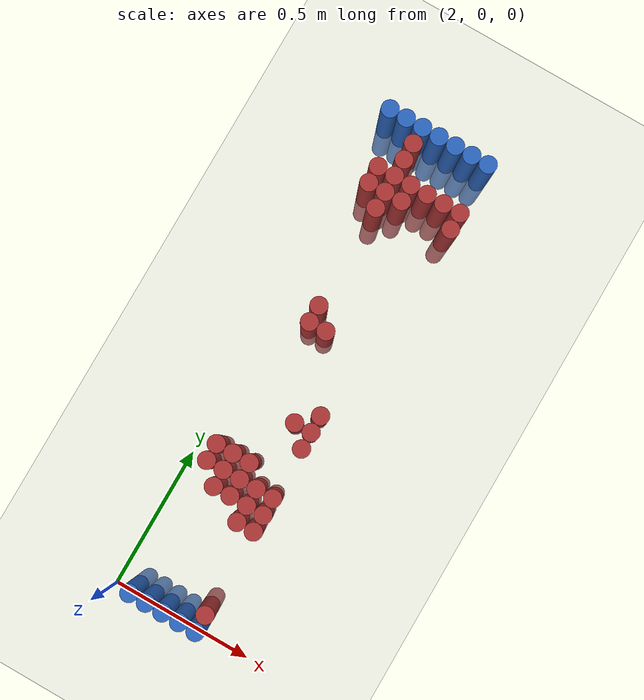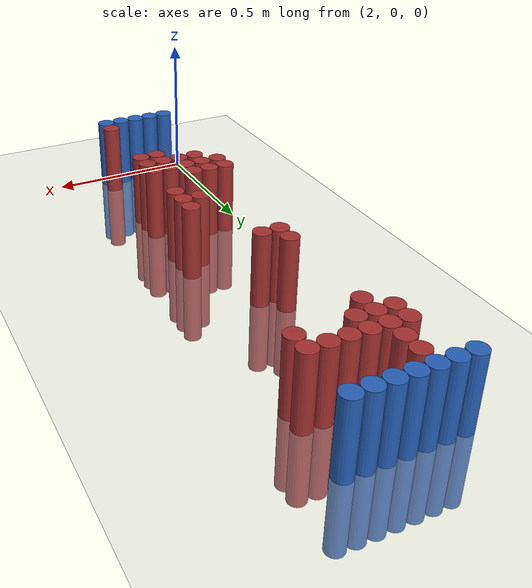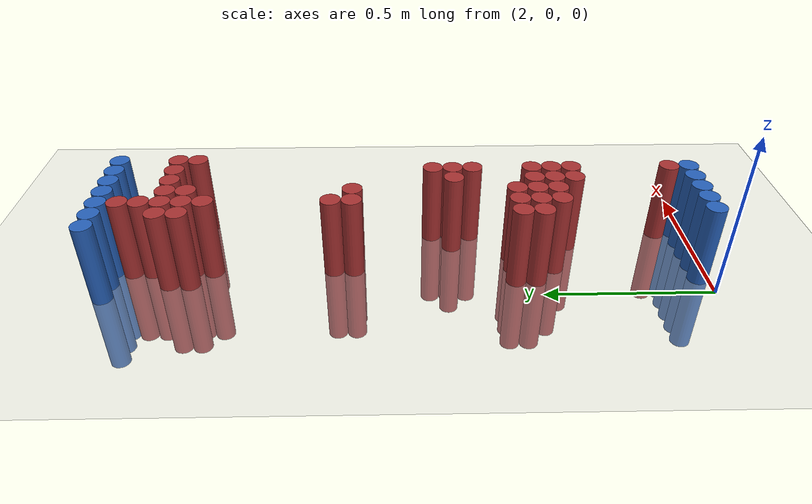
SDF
<sdf version="1.6">
 <world name="default">
  <model name="ground_plane">
   <static>1</static>
   <link name="link">
    <collision name="collision">
     <geometry><plane><normal>0 0 1</normal><size>100 100</size></plane></geometry>
     <surface><friction><ode><mu>100</mu><mu2>50</mu2></ode></friction></surface>
    </collision>
    <visual name="visual">
     <cast_shadows>0</cast_shadows>
     <geometry><plane><normal>0 0 1</normal><size>100 100</size></plane></geometry>
     <material>
      <script><uri>file://media/materials/scripts/gazebo.material</uri><name>Gazebo/Grey</name></script>
     </material>
    </visual>
   </link>
  </model>
  <model name="unit_cylinder_94">
   <static>1</static>
   <pose>2.010000 1.770000 0.000000 0.000000 0.000000 0.000000</pose>
   <link name="link">
    <inertial>
     <mass>1</mass>
     <inertia><ixx>0.145833</ixx><ixy>0</ixy><ixz>0</ixz><iyy>0.145833</iyy><iyz>0</iyz><izz>0.125</izz></inertia>
    </inertial>
    <collision name="collision">
     <geometry><cylinder><radius>0.030000</radius><length>0.5</length></cylinder></geometry>
    </collision>
    <visual name="visual">
     <geometry><cylinder><radius>0.030000</radius><length>0.5</length></cylinder></geometry>
     <material>
      <ambient>0.152000 0.379000 0.720000 1</ambient>
      <diffuse>0.152000 0.379000 0.720000 1</diffuse>
     </material>
     <material>
      <script><name>Gazebo/Grey</name><uri>file://media/materials/scripts/gazebo.material</uri></script>
     </material>
    </visual>
   </link>
  </model>
  <model name="unit_cylinder_95">
   <static>1</static>
   <pose>2.070000 1.770000 0.000000 0.000000 0.000000 0.000000</pose>
   <link name="link">
    <inertial>
     <mass>1</mass>
     <inertia><ixx>0.145833</ixx><ixy>0</ixy><ixz>0</ixz><iyy>0.145833</iyy><iyz>0</iyz><izz>0.125</izz></inertia>
    </inertial>
    <collision name="collision">
     <geometry><cylinder><radius>0.030000</radius><length>0.5</length></cylinder></geometry>
    </collision>
    <visual name="visual">
     <geometry><cylinder><radius>0.030000</radius><length>0.5</length></cylinder></geometry>
     <material>
      <ambient>0.152000 0.379000 0.720000 1</ambient>
      <diffuse>0.152000 0.379000 0.720000 1</diffuse>
     </material>
     <material>
      <script><name>Gazebo/Grey</name><uri>file://media/materials/scripts/gazebo.material</uri></script>
     </material>
    </visual>
   </link>
  </model>
  <model name="unit_cylinder_96">
   <static>1</static>
   <pose>2.130000 1.770000 0.000000 0.000000 0.000000 0.000000</pose>
   <link name="link">
    <inertial>
     <mass>1</mass>
     <inertia><ixx>0.145833</ixx><ixy>0</ixy><ixz>0</ixz><iyy>0.145833</iyy><iyz>0</iyz><izz>0.125</izz></inertia>
    </inertial>
    <collision name="collision">
     <geometry><cylinder><radius>0.030000</radius><length>0.5</length></cylinder></geometry>
    </collision>
    <visual name="visual">
     <geometry><cylinder><radius>0.030000</radius><length>0.5</length></cylinder></geometry>
     <material>
      <ambient>0.152000 0.379000 0.720000 1</ambient>
      <diffuse>0.152000 0.379000 0.720000 1</diffuse>
     </material>
     <material>
      <script><name>Gazebo/Grey</name><uri>file://media/materials/scripts/gazebo.material</uri></script>
     </material>
    </visual>
   </link>
  </model>
  <model name="unit_cylinder_97">
   <static>1</static>
   <pose>2.190000 1.770000 0.000000 0.000000 0.000000 0.000000</pose>
   <link name="link">
    <inertial>
     <mass>1</mass>
     <inertia><ixx>0.145833</ixx><ixy>0</ixy><ixz>0</ixz><iyy>0.145833</iyy><iyz>0</iyz><izz>0.125</izz></inertia>
    </inertial>
    <collision name="collision">
     <geometry><cylinder><radius>0.030000</radius><length>0.5</length></cylinder></geometry>
    </collision>
    <visual name="visual">
     <geometry><cylinder><radius>0.030000</radius><length>0.5</length></cylinder></geometry>
     <material>
      <ambient>0.152000 0.379000 0.720000 1</ambient>
      <diffuse>0.152000 0.379000 0.720000 1</diffuse>
     </material>
     <material>
      <script><name>Gazebo/Grey</name><uri>file://media/materials/scripts/gazebo.material</uri></script>
     </material>
    </visual>
   </link>
  </model>
  <model name="unit_cylinder_98">
   <static>1</static>
   <pose>2.250000 1.770000 0.000000 0.000000 0.000000 0.000000</pose>
   <link name="link">
    <inertial>
     <mass>1</mass>
     <inertia><ixx>0.145833</ixx><ixy>0</ixy><ixz>0</ixz><iyy>0.145833</iyy><iyz>0</iyz><izz>0.125</izz></inertia>
    </inertial>
    <collision name="collision">
     <geometry><cylinder><radius>0.030000</radius><length>0.5</length></cylinder></geometry>
    </collision>
    <visual name="visual">
     <geometry><cylinder><radius>0.030000</radius><length>0.5</length></cylinder></geometry>
     <material>
      <ambient>0.152000 0.379000 0.720000 1</ambient>
      <diffuse>0.152000 0.379000 0.720000 1</diffuse>
     </material>
     <material>
      <script><name>Gazebo/Grey</name><uri>file://media/materials/scripts/gazebo.material</uri></script>
     </material>
    </visual>
   </link>
  </model>
  <model name="unit_cylinder_99">
   <static>1</static>
   <pose>2.310000 1.770000 0.000000 0.000000 0.000000 0.000000</pose>
   <link name="link">
    <inertial>
     <mass>1</mass>
     <inertia><ixx>0.145833</ixx><ixy>0</ixy><ixz>0</ixz><iyy>0.145833</iyy><iyz>0</iyz><izz>0.125</izz></inertia>
    </inertial>
    <collision name="collision">
     <geometry><cylinder><radius>0.030000</radius><length>0.5</length></cylinder></geometry>
    </collision>
    <visual name="visual">
     <geometry><cylinder><radius>0.030000</radius><length>0.5</length></cylinder></geometry>
     <material>
      <ambient>0.152000 0.379000 0.720000 1</ambient>
      <diffuse>0.152000 0.379000 0.720000 1</diffuse>
     </material>
     <material>
      <script><name>Gazebo/Grey</name><uri>file://media/materials/scripts/gazebo.material</uri></script>
     </material>
    </visual>
   </link>
  </model>
  <model name="unit_cylinder_100">
   <static>1</static>
   <pose>2.370000 1.770000 0.000000 0.000000 0.000000 0.000000</pose>
   <link name="link">
    <inertial>
     <mass>1</mass>
     <inertia><ixx>0.145833</ixx><ixy>0</ixy><ixz>0</ixz><iyy>0.145833</iyy><iyz>0</iyz><izz>0.125</izz></inertia>
    </inertial>
    <collision name="collision">
     <geometry><cylinder><radius>0.030000</radius><length>0.5</length></cylinder></geometry>
    </collision>
    <visual name="visual">
     <geometry><cylinder><radius>0.030000</radius><length>0.5</length></cylinder></geometry>
     <material>
      <ambient>0.152000 0.379000 0.720000 1</ambient>
      <diffuse>0.152000 0.379000 0.720000 1</diffuse>
     </material>
     <material>
      <script><name>Gazebo/Grey</name><uri>file://media/materials/scripts/gazebo.material</uri></script>
     </material>
    </visual>
   </link>
  </model>
  <model name="unit_cylinder_125">
   <static>1</static>
   <pose>2.130000 1.710000 0.000000 0.000000 0.000000 0.000000</pose>
   <link name="link">
    <inertial>
     <mass>1</mass>
     <inertia><ixx>0.145833</ixx><ixy>0</ixy><ixz>0</ixz><iyy>0.145833</iyy><iyz>0</iyz><izz>0.125</izz></inertia>
    </inertial>
    <collision name="collision">
     <geometry><cylinder><radius>0.030000</radius><length>0.5</length></cylinder></geometry>
    </collision>
    <visual name="visual">
     <geometry><cylinder><radius>0.030000</radius><length>0.5</length></cylinder></geometry>
     <material>
      <ambient>0.648000 0.192000 0.192000 1</ambient>
      <diffuse>0.648000 0.192000 0.192000 1</diffuse>
     </material>
     <material>
      <script><name>Gazebo/Grey</name><uri>file://media/materials/scripts/gazebo.material</uri></script>
     </material>
    </visual>
   </link>
  </model>
  <model name="unit_cylinder_137">
   <static>1</static>
   <pose>2.130000 1.650000 0.000000 0.000000 0.000000 0.000000</pose>
   <link name="link">
    <inertial>
     <mass>1</mass>
     <inertia><ixx>0.145833</ixx><ixy>0</ixy><ixz>0</ixz><iyy>0.145833</iyy><iyz>0</iyz><izz>0.125</izz></inertia>
    </inertial>
    <collision name="collision">
     <geometry><cylinder><radius>0.030000</radius><length>0.5</length></cylinder></geometry>
    </collision>
    <visual name="visual">
     <geometry><cylinder><radius>0.030000</radius><length>0.5</length></cylinder></geometry>
     <material>
      <ambient>0.648000 0.192000 0.192000 1</ambient>
      <diffuse>0.648000 0.192000 0.192000 1</diffuse>
     </material>
     <material>
      <script><name>Gazebo/Grey</name><uri>file://media/materials/scripts/gazebo.material</uri></script>
     </material>
    </visual>
   </link>
  </model>
  <model name="unit_cylinder_143">
   <static>1</static>
   <pose>2.070000 1.590000 0.000000 0.000000 0.000000 0.000000</pose>
   <link name="link">
    <inertial>
     <mass>1</mass>
     <inertia><ixx>0.145833</ixx><ixy>0</ixy><ixz>0</ixz><iyy>0.145833</iyy><iyz>0</iyz><izz>0.125</izz></inertia>
    </inertial>
    <collision name="collision">
     <geometry><cylinder><radius>0.030000</radius><length>0.5</length></cylinder></geometry>
    </collision>
    <visual name="visual">
     <geometry><cylinder><radius>0.030000</radius><length>0.5</length></cylinder></geometry>
     <material>
      <ambient>0.648000 0.192000 0.192000 1</ambient>
      <diffuse>0.648000 0.192000 0.192000 1</diffuse>
     </material>
     <material>
      <script><name>Gazebo/Grey</name><uri>file://media/materials/scripts/gazebo.material</uri></script>
     </material>
    </visual>
   </link>
  </model>
  <model name="unit_cylinder_144">
   <static>1</static>
   <pose>2.130000 1.590000 0.000000 0.000000 0.000000 0.000000</pose>
   <link name="link">
    <inertial>
     <mass>1</mass>
     <inertia><ixx>0.145833</ixx><ixy>0</ixy><ixz>0</ixz><iyy>0.145833</iyy><iyz>0</iyz><izz>0.125</izz></inertia>
    </inertial>
    <collision name="collision">
     <geometry><cylinder><radius>0.030000</radius><length>0.5</length></cylinder></geometry>
    </collision>
    <visual name="visual">
     <geometry><cylinder><radius>0.030000</radius><length>0.5</length></cylinder></geometry>
     <material>
      <ambient>0.648000 0.192000 0.192000 1</ambient>
      <diffuse>0.648000 0.192000 0.192000 1</diffuse>
     </material>
     <material>
      <script><name>Gazebo/Grey</name><uri>file://media/materials/scripts/gazebo.material</uri></script>
     </material>
    </visual>
   </link>
  </model>
  <model name="unit_cylinder_145">
   <static>1</static>
   <pose>2.190000 1.590000 0.000000 0.000000 0.000000 0.000000</pose>
   <link name="link">
    <inertial>
     <mass>1</mass>
     <inertia><ixx>0.145833</ixx><ixy>0</ixy><ixz>0</ixz><iyy>0.145833</iyy><iyz>0</iyz><izz>0.125</izz></inertia>
    </inertial>
    <collision name="collision">
     <geometry><cylinder><radius>0.030000</radius><length>0.5</length></cylinder></geometry>
    </collision>
    <visual name="visual">
     <geometry><cylinder><radius>0.030000</radius><length>0.5</length></cylinder></geometry>
     <material>
      <ambient>0.648000 0.192000 0.192000 1</ambient>
      <diffuse>0.648000 0.192000 0.192000 1</diffuse>
     </material>
     <material>
      <script><name>Gazebo/Grey</name><uri>file://media/materials/scripts/gazebo.material</uri></script>
     </material>
    </visual>
   </link>
  </model>
  <model name="unit_cylinder_146">
   <static>1</static>
   <pose>2.250000 1.590000 0.000000 0.000000 0.000000 0.000000</pose>
   <link name="link">
    <inertial>
     <mass>1</mass>
     <inertia><ixx>0.145833</ixx><ixy>0</ixy><ixz>0</ixz><iyy>0.145833</iyy><iyz>0</iyz><izz>0.125</izz></inertia>
    </inertial>
    <collision name="collision">
     <geometry><cylinder><radius>0.030000</radius><length>0.5</length></cylinder></geometry>
    </collision>
    <visual name="visual">
     <geometry><cylinder><radius>0.030000</radius><length>0.5</length></cylinder></geometry>
     <material>
      <ambient>0.648000 0.192000 0.192000 1</ambient>
      <diffuse>0.648000 0.192000 0.192000 1</diffuse>
     </material>
     <material>
      <script><name>Gazebo/Grey</name><uri>file://media/materials/scripts/gazebo.material</uri></script>
     </material>
    </visual>
   </link>
  </model>
  <model name="unit_cylinder_147">
   <static>1</static>
   <pose>2.310000 1.590000 0.000000 0.000000 0.000000 0.000000</pose>
   <link name="link">
    <inertial>
     <mass>1</mass>
     <inertia><ixx>0.145833</ixx><ixy>0</ixy><ixz>0</ixz><iyy>0.145833</iyy><iyz>0</iyz><izz>0.125</izz></inertia>
    </inertial>
    <collision name="collision">
     <geometry><cylinder><radius>0.030000</radius><length>0.5</length></cylinder></geometry>
    </collision>
    <visual name="visual">
     <geometry><cylinder><radius>0.030000</radius><length>0.5</length></cylinder></geometry>
     <material>
      <ambient>0.648000 0.192000 0.192000 1</ambient>
      <diffuse>0.648000 0.192000 0.192000 1</diffuse>
     </material>
     <material>
      <script><name>Gazebo/Grey</name><uri>file://media/materials/scripts/gazebo.material</uri></script>
     </material>
    </visual>
   </link>
  </model>
  <model name="unit_cylinder_148">
   <static>1</static>
   <pose>2.370000 1.590000 0.000000 0.000000 0.000000 0.000000</pose>
   <link name="link">
    <inertial>
     <mass>1</mass>
     <inertia><ixx>0.145833</ixx><ixy>0</ixy><ixz>0</ixz><iyy>0.145833</iyy><iyz>0</iyz><izz>0.125</izz></inertia>
    </inertial>
    <collision name="collision">
     <geometry><cylinder><radius>0.030000</radius><length>0.5</length></cylinder></geometry>
    </collision>
    <visual name="visual">
     <geometry><cylinder><radius>0.030000</radius><length>0.5</length></cylinder></geometry>
     <material>
      <ambient>0.648000 0.192000 0.192000 1</ambient>
      <diffuse>0.648000 0.192000 0.192000 1</diffuse>
     </material>
     <material>
      <script><name>Gazebo/Grey</name><uri>file://media/materials/scripts/gazebo.material</uri></script>
     </material>
    </visual>
   </link>
  </model>
  <model name="unit_cylinder_157">
   <static>1</static>
   <pose>2.070000 1.530000 0.000000 0.000000 0.000000 0.000000</pose>
   <link name="link">
    <inertial>
     <mass>1</mass>
     <inertia><ixx>0.145833</ixx><ixy>0</ixy><ixz>0</ixz><iyy>0.145833</iyy><iyz>0</iyz><izz>0.125</izz></inertia>
    </inertial>
    <collision name="collision">
     <geometry><cylinder><radius>0.030000</radius><length>0.5</length></cylinder></geometry>
    </collision>
    <visual name="visual">
     <geometry><cylinder><radius>0.030000</radius><length>0.5</length></cylinder></geometry>
     <material>
      <ambient>0.648000 0.192000 0.192000 1</ambient>
      <diffuse>0.648000 0.192000 0.192000 1</diffuse>
     </material>
     <material>
      <script><name>Gazebo/Grey</name><uri>file://media/materials/scripts/gazebo.material</uri></script>
     </material>
    </visual>
   </link>
  </model>
  <model name="unit_cylinder_158">
   <static>1</static>
   <pose>2.130000 1.530000 0.000000 0.000000 0.000000 0.000000</pose>
   <link name="link">
    <inertial>
     <mass>1</mass>
     <inertia><ixx>0.145833</ixx><ixy>0</ixy><ixz>0</ixz><iyy>0.145833</iyy><iyz>0</iyz><izz>0.125</izz></inertia>
    </inertial>
    <collision name="collision">
     <geometry><cylinder><radius>0.030000</radius><length>0.5</length></cylinder></geometry>
    </collision>
    <visual name="visual">
     <geometry><cylinder><radius>0.030000</radius><length>0.5</length></cylinder></geometry>
     <material>
      <ambient>0.648000 0.192000 0.192000 1</ambient>
      <diffuse>0.648000 0.192000 0.192000 1</diffuse>
     </material>
     <material>
      <script><name>Gazebo/Grey</name><uri>file://media/materials/scripts/gazebo.material</uri></script>
     </material>
    </visual>
   </link>
  </model>
  <model name="unit_cylinder_159">
   <static>1</static>
   <pose>2.190000 1.530000 0.000000 0.000000 0.000000 0.000000</pose>
   <link name="link">
    <inertial>
     <mass>1</mass>
     <inertia><ixx>0.145833</ixx><ixy>0</ixy><ixz>0</ixz><iyy>0.145833</iyy><iyz>0</iyz><izz>0.125</izz></inertia>
    </inertial>
    <collision name="collision">
     <geometry><cylinder><radius>0.030000</radius><length>0.5</length></cylinder></geometry>
    </collision>
    <visual name="visual">
     <geometry><cylinder><radius>0.030000</radius><length>0.5</length></cylinder></geometry>
     <material>
      <ambient>0.648000 0.192000 0.192000 1</ambient>
      <diffuse>0.648000 0.192000 0.192000 1</diffuse>
     </material>
     <material>
      <script><name>Gazebo/Grey</name><uri>file://media/materials/scripts/gazebo.material</uri></script>
     </material>
    </visual>
   </link>
  </model>
  <model name="unit_cylinder_160">
   <static>1</static>
   <pose>2.370000 1.530000 0.000000 0.000000 0.000000 0.000000</pose>
   <link name="link">
    <inertial>
     <mass>1</mass>
     <inertia><ixx>0.145833</ixx><ixy>0</ixy><ixz>0</ixz><iyy>0.145833</iyy><iyz>0</iyz><izz>0.125</izz></inertia>
    </inertial>
    <collision name="collision">
     <geometry><cylinder><radius>0.030000</radius><length>0.5</length></cylinder></geometry>
    </collision>
    <visual name="visual">
     <geometry><cylinder><radius>0.030000</radius><length>0.5</length></cylinder></geometry>
     <material>
      <ambient>0.648000 0.192000 0.192000 1</ambient>
      <diffuse>0.648000 0.192000 0.192000 1</diffuse>
     </material>
     <material>
      <script><name>Gazebo/Grey</name><uri>file://media/materials/scripts/gazebo.material</uri></script>
     </material>
    </visual>
   </link>
  </model>
  <model name="unit_cylinder_170">
   <static>1</static>
   <pose>2.130000 1.470000 0.000000 0.000000 0.000000 0.000000</pose>
   <link name="link">
    <inertial>
     <mass>1</mass>
     <inertia><ixx>0.145833</ixx><ixy>0</ixy><ixz>0</ixz><iyy>0.145833</iyy><iyz>0</iyz><izz>0.125</izz></inertia>
    </inertial>
    <collision name="collision">
     <geometry><cylinder><radius>0.030000</radius><length>0.5</length></cylinder></geometry>
    </collision>
    <visual name="visual">
     <geometry><cylinder><radius>0.030000</radius><length>0.5</length></cylinder></geometry>
     <material>
      <ambient>0.648000 0.192000 0.192000 1</ambient>
      <diffuse>0.648000 0.192000 0.192000 1</diffuse>
     </material>
     <material>
      <script><name>Gazebo/Grey</name><uri>file://media/materials/scripts/gazebo.material</uri></script>
     </material>
    </visual>
   </link>
  </model>
  <model name="unit_cylinder_188">
   <static>1</static>
   <pose>2.130000 1.110000 0.000000 0.000000 0.000000 0.000000</pose>
   <link name="link">
    <inertial>
     <mass>1</mass>
     <inertia><ixx>0.145833</ixx><ixy>0</ixy><ixz>0</ixz><iyy>0.145833</iyy><iyz>0</iyz><izz>0.125</izz></inertia>
    </inertial>
    <collision name="collision">
     <geometry><cylinder><radius>0.030000</radius><length>0.5</length></cylinder></geometry>
    </collision>
    <visual name="visual">
     <geometry><cylinder><radius>0.030000</radius><length>0.5</length></cylinder></geometry>
     <material>
      <ambient>0.648000 0.192000 0.192000 1</ambient>
      <diffuse>0.648000 0.192000 0.192000 1</diffuse>
     </material>
     <material>
      <script><name>Gazebo/Grey</name><uri>file://media/materials/scripts/gazebo.material</uri></script>
     </material>
    </visual>
   </link>
  </model>
  <model name="unit_cylinder_189">
   <static>1</static>
   <pose>2.130000 1.050000 0.000000 0.000000 0.000000 0.000000</pose>
   <link name="link">
    <inertial>
     <mass>1</mass>
     <inertia><ixx>0.145833</ixx><ixy>0</ixy><ixz>0</ixz><iyy>0.145833</iyy><iyz>0</iyz><izz>0.125</izz></inertia>
    </inertial>
    <collision name="collision">
     <geometry><cylinder><radius>0.030000</radius><length>0.5</length></cylinder></geometry>
    </collision>
    <visual name="visual">
     <geometry><cylinder><radius>0.030000</radius><length>0.5</length></cylinder></geometry>
     <material>
      <ambient>0.648000 0.192000 0.192000 1</ambient>
      <diffuse>0.648000 0.192000 0.192000 1</diffuse>
     </material>
     <material>
      <script><name>Gazebo/Grey</name><uri>file://media/materials/scripts/gazebo.material</uri></script>
     </material>
    </visual>
   </link>
  </model>
  <model name="unit_cylinder_190">
   <static>1</static>
   <pose>2.190000 1.050000 0.000000 0.000000 0.000000 0.000000</pose>
   <link name="link">
    <inertial>
     <mass>1</mass>
     <inertia><ixx>0.145833</ixx><ixy>0</ixy><ixz>0</ixz><iyy>0.145833</iyy><iyz>0</iyz><izz>0.125</izz></inertia>
    </inertial>
    <collision name="collision">
     <geometry><cylinder><radius>0.030000</radius><length>0.5</length></cylinder></geometry>
    </collision>
    <visual name="visual">
     <geometry><cylinder><radius>0.030000</radius><length>0.5</length></cylinder></geometry>
     <material>
      <ambient>0.648000 0.192000 0.192000 1</ambient>
      <diffuse>0.648000 0.192000 0.192000 1</diffuse>
     </material>
     <material>
      <script><name>Gazebo/Grey</name><uri>file://media/materials/scripts/gazebo.material</uri></script>
     </material>
    </visual>
   </link>
  </model>
  <model name="unit_cylinder_191">
   <static>1</static>
   <pose>2.310000 0.810000 0.000000 0.000000 0.000000 0.000000</pose>
   <link name="link">
    <inertial>
     <mass>1</mass>
     <inertia><ixx>0.145833</ixx><ixy>0</ixy><ixz>0</ixz><iyy>0.145833</iyy><iyz>0</iyz><izz>0.125</izz></inertia>
    </inertial>
    <collision name="collision">
     <geometry><cylinder><radius>0.030000</radius><length>0.5</length></cylinder></geometry>
    </collision>
    <visual name="visual">
     <geometry><cylinder><radius>0.030000</radius><length>0.5</length></cylinder></geometry>
     <material>
      <ambient>0.648000 0.192000 0.192000 1</ambient>
      <diffuse>0.648000 0.192000 0.192000 1</diffuse>
     </material>
     <material>
      <script><name>Gazebo/Grey</name><uri>file://media/materials/scripts/gazebo.material</uri></script>
     </material>
    </visual>
   </link>
  </model>
  <model name="unit_cylinder_197">
   <static>1</static>
   <pose>2.250000 0.750000 0.000000 0.000000 0.000000 0.000000</pose>
   <link name="link">
    <inertial>
     <mass>1</mass>
     <inertia><ixx>0.145833</ixx><ixy>0</ixy><ixz>0</ixz><iyy>0.145833</iyy><iyz>0</iyz><izz>0.125</izz></inertia>
    </inertial>
    <collision name="collision">
     <geometry><cylinder><radius>0.030000</radius><length>0.5</length></cylinder></geometry>
    </collision>
    <visual name="visual">
     <geometry><cylinder><radius>0.030000</radius><length>0.5</length></cylinder></geometry>
     <material>
      <ambient>0.648000 0.192000 0.192000 1</ambient>
      <diffuse>0.648000 0.192000 0.192000 1</diffuse>
     </material>
     <material>
      <script><name>Gazebo/Grey</name><uri>file://media/materials/scripts/gazebo.material</uri></script>
     </material>
    </visual>
   </link>
  </model>
  <model name="unit_cylinder_198">
   <static>1</static>
   <pose>2.310000 0.750000 0.000000 0.000000 0.000000 0.000000</pose>
   <link name="link">
    <inertial>
     <mass>1</mass>
     <inertia><ixx>0.145833</ixx><ixy>0</ixy><ixz>0</ixz><iyy>0.145833</iyy><iyz>0</iyz><izz>0.125</izz></inertia>
    </inertial>
    <collision name="collision">
     <geometry><cylinder><radius>0.030000</radius><length>0.5</length></cylinder></geometry>
    </collision>
    <visual name="visual">
     <geometry><cylinder><radius>0.030000</radius><length>0.5</length></cylinder></geometry>
     <material>
      <ambient>0.648000 0.192000 0.192000 1</ambient>
      <diffuse>0.648000 0.192000 0.192000 1</diffuse>
     </material>
     <material>
      <script><name>Gazebo/Grey</name><uri>file://media/materials/scripts/gazebo.material</uri></script>
     </material>
    </visual>
   </link>
  </model>
  <model name="unit_cylinder_203">
   <static>1</static>
   <pose>2.310000 0.690000 0.000000 0.000000 0.000000 0.000000</pose>
   <link name="link">
    <inertial>
     <mass>1</mass>
     <inertia><ixx>0.145833</ixx><ixy>0</ixy><ixz>0</ixz><iyy>0.145833</iyy><iyz>0</iyz><izz>0.125</izz></inertia>
    </inertial>
    <collision name="collision">
     <geometry><cylinder><radius>0.030000</radius><length>0.5</length></cylinder></geometry>
    </collision>
    <visual name="visual">
     <geometry><cylinder><radius>0.030000</radius><length>0.5</length></cylinder></geometry>
     <material>
      <ambient>0.648000 0.192000 0.192000 1</ambient>
      <diffuse>0.648000 0.192000 0.192000 1</diffuse>
     </material>
     <material>
      <script><name>Gazebo/Grey</name><uri>file://media/materials/scripts/gazebo.material</uri></script>
     </material>
    </visual>
   </link>
  </model>
  <model name="unit_cylinder_223">
   <static>1</static>
   <pose>2.070000 0.570000 0.000000 0.000000 0.000000 0.000000</pose>
   <link name="link">
    <inertial>
     <mass>1</mass>
     <inertia><ixx>0.145833</ixx><ixy>0</ixy><ixz>0</ixz><iyy>0.145833</iyy><iyz>0</iyz><izz>0.125</izz></inertia>
    </inertial>
    <collision name="collision">
     <geometry><cylinder><radius>0.030000</radius><length>0.5</length></cylinder></geometry>
    </collision>
    <visual name="visual">
     <geometry><cylinder><radius>0.030000</radius><length>0.5</length></cylinder></geometry>
     <material>
      <ambient>0.648000 0.192000 0.192000 1</ambient>
      <diffuse>0.648000 0.192000 0.192000 1</diffuse>
     </material>
     <material>
      <script><name>Gazebo/Grey</name><uri>file://media/materials/scripts/gazebo.material</uri></script>
     </material>
    </visual>
   </link>
  </model>
  <model name="unit_cylinder_224">
   <static>1</static>
   <pose>2.130000 0.570000 0.000000 0.000000 0.000000 0.000000</pose>
   <link name="link">
    <inertial>
     <mass>1</mass>
     <inertia><ixx>0.145833</ixx><ixy>0</ixy><ixz>0</ixz><iyy>0.145833</iyy><iyz>0</iyz><izz>0.125</izz></inertia>
    </inertial>
    <collision name="collision">
     <geometry><cylinder><radius>0.030000</radius><length>0.5</length></cylinder></geometry>
    </collision>
    <visual name="visual">
     <geometry><cylinder><radius>0.030000</radius><length>0.5</length></cylinder></geometry>
     <material>
      <ambient>0.648000 0.192000 0.192000 1</ambient>
      <diffuse>0.648000 0.192000 0.192000 1</diffuse>
     </material>
     <material>
      <script><name>Gazebo/Grey</name><uri>file://media/materials/scripts/gazebo.material</uri></script>
     </material>
    </visual>
   </link>
  </model>
  <model name="unit_cylinder_225">
   <static>1</static>
   <pose>2.190000 0.570000 0.000000 0.000000 0.000000 0.000000</pose>
   <link name="link">
    <inertial>
     <mass>1</mass>
     <inertia><ixx>0.145833</ixx><ixy>0</ixy><ixz>0</ixz><iyy>0.145833</iyy><iyz>0</iyz><izz>0.125</izz></inertia>
    </inertial>
    <collision name="collision">
     <geometry><cylinder><radius>0.030000</radius><length>0.5</length></cylinder></geometry>
    </collision>
    <visual name="visual">
     <geometry><cylinder><radius>0.030000</radius><length>0.5</length></cylinder></geometry>
     <material>
      <ambient>0.648000 0.192000 0.192000 1</ambient>
      <diffuse>0.648000 0.192000 0.192000 1</diffuse>
     </material>
     <material>
      <script><name>Gazebo/Grey</name><uri>file://media/materials/scripts/gazebo.material</uri></script>
     </material>
    </visual>
   </link>
  </model>
  <model name="unit_cylinder_233">
   <static>1</static>
   <pose>2.070000 0.510000 0.000000 0.000000 0.000000 0.000000</pose>
   <link name="link">
    <inertial>
     <mass>1</mass>
     <inertia><ixx>0.145833</ixx><ixy>0</ixy><ixz>0</ixz><iyy>0.145833</iyy><iyz>0</iyz><izz>0.125</izz></inertia>
    </inertial>
    <collision name="collision">
     <geometry><cylinder><radius>0.030000</radius><length>0.5</length></cylinder></geometry>
    </collision>
    <visual name="visual">
     <geometry><cylinder><radius>0.030000</radius><length>0.5</length></cylinder></geometry>
     <material>
      <ambient>0.648000 0.192000 0.192000 1</ambient>
      <diffuse>0.648000 0.192000 0.192000 1</diffuse>
     </material>
     <material>
      <script><name>Gazebo/Grey</name><uri>file://media/materials/scripts/gazebo.material</uri></script>
     </material>
    </visual>
   </link>
  </model>
  <model name="unit_cylinder_234">
   <static>1</static>
   <pose>2.130000 0.510000 0.000000 0.000000 0.000000 0.000000</pose>
   <link name="link">
    <inertial>
     <mass>1</mass>
     <inertia><ixx>0.145833</ixx><ixy>0</ixy><ixz>0</ixz><iyy>0.145833</iyy><iyz>0</iyz><izz>0.125</izz></inertia>
    </inertial>
    <collision name="collision">
     <geometry><cylinder><radius>0.030000</radius><length>0.5</length></cylinder></geometry>
    </collision>
    <visual name="visual">
     <geometry><cylinder><radius>0.030000</radius><length>0.5</length></cylinder></geometry>
     <material>
      <ambient>0.648000 0.192000 0.192000 1</ambient>
      <diffuse>0.648000 0.192000 0.192000 1</diffuse>
     </material>
     <material>
      <script><name>Gazebo/Grey</name><uri>file://media/materials/scripts/gazebo.material</uri></script>
     </material>
    </visual>
   </link>
  </model>
  <model name="unit_cylinder_235">
   <static>1</static>
   <pose>2.190000 0.510000 0.000000 0.000000 0.000000 0.000000</pose>
   <link name="link">
    <inertial>
     <mass>1</mass>
     <inertia><ixx>0.145833</ixx><ixy>0</ixy><ixz>0</ixz><iyy>0.145833</iyy><iyz>0</iyz><izz>0.125</izz></inertia>
    </inertial>
    <collision name="collision">
     <geometry><cylinder><radius>0.030000</radius><length>0.5</length></cylinder></geometry>
    </collision>
    <visual name="visual">
     <geometry><cylinder><radius>0.030000</radius><length>0.5</length></cylinder></geometry>
     <material>
      <ambient>0.648000 0.192000 0.192000 1</ambient>
      <diffuse>0.648000 0.192000 0.192000 1</diffuse>
     </material>
     <material>
      <script><name>Gazebo/Grey</name><uri>file://media/materials/scripts/gazebo.material</uri></script>
     </material>
    </visual>
   </link>
  </model>
  <model name="unit_cylinder_236">
   <static>1</static>
   <pose>2.250000 0.510000 0.000000 0.000000 0.000000 0.000000</pose>
   <link name="link">
    <inertial>
     <mass>1</mass>
     <inertia><ixx>0.145833</ixx><ixy>0</ixy><ixz>0</ixz><iyy>0.145833</iyy><iyz>0</iyz><izz>0.125</izz></inertia>
    </inertial>
    <collision name="collision">
     <geometry><cylinder><radius>0.030000</radius><length>0.5</length></cylinder></geometry>
    </collision>
    <visual name="visual">
     <geometry><cylinder><radius>0.030000</radius><length>0.5</length></cylinder></geometry>
     <material>
      <ambient>0.648000 0.192000 0.192000 1</ambient>
      <diffuse>0.648000 0.192000 0.192000 1</diffuse>
     </material>
     <material>
      <script><name>Gazebo/Grey</name><uri>file://media/materials/scripts/gazebo.material</uri></script>
     </material>
    </visual>
   </link>
  </model>
  <model name="unit_cylinder_237">
   <static>1</static>
   <pose>2.310000 0.510000 0.000000 0.000000 0.000000 0.000000</pose>
   <link name="link">
    <inertial>
     <mass>1</mass>
     <inertia><ixx>0.145833</ixx><ixy>0</ixy><ixz>0</ixz><iyy>0.145833</iyy><iyz>0</iyz><izz>0.125</izz></inertia>
    </inertial>
    <collision name="collision">
     <geometry><cylinder><radius>0.030000</radius><length>0.5</length></cylinder></geometry>
    </collision>
    <visual name="visual">
     <geometry><cylinder><radius>0.030000</radius><length>0.5</length></cylinder></geometry>
     <material>
      <ambient>0.648000 0.192000 0.192000 1</ambient>
      <diffuse>0.648000 0.192000 0.192000 1</diffuse>
     </material>
     <material>
      <script><name>Gazebo/Grey</name><uri>file://media/materials/scripts/gazebo.material</uri></script>
     </material>
    </visual>
   </link>
  </model>
  <model name="unit_cylinder_243">
   <static>1</static>
   <pose>2.130000 0.450000 0.000000 0.000000 0.000000 0.000000</pose>
   <link name="link">
    <inertial>
     <mass>1</mass>
     <inertia><ixx>0.145833</ixx><ixy>0</ixy><ixz>0</ixz><iyy>0.145833</iyy><iyz>0</iyz><izz>0.125</izz></inertia>
    </inertial>
    <collision name="collision">
     <geometry><cylinder><radius>0.030000</radius><length>0.5</length></cylinder></geometry>
    </collision>
    <visual name="visual">
     <geometry><cylinder><radius>0.030000</radius><length>0.5</length></cylinder></geometry>
     <material>
      <ambient>0.648000 0.192000 0.192000 1</ambient>
      <diffuse>0.648000 0.192000 0.192000 1</diffuse>
     </material>
     <material>
      <script><name>Gazebo/Grey</name><uri>file://media/materials/scripts/gazebo.material</uri></script>
     </material>
    </visual>
   </link>
  </model>
  <model name="unit_cylinder_244">
   <static>1</static>
   <pose>2.190000 0.450000 0.000000 0.000000 0.000000 0.000000</pose>
   <link name="link">
    <inertial>
     <mass>1</mass>
     <inertia><ixx>0.145833</ixx><ixy>0</ixy><ixz>0</ixz><iyy>0.145833</iyy><iyz>0</iyz><izz>0.125</izz></inertia>
    </inertial>
    <collision name="collision">
     <geometry><cylinder><radius>0.030000</radius><length>0.5</length></cylinder></geometry>
    </collision>
    <visual name="visual">
     <geometry><cylinder><radius>0.030000</radius><length>0.5</length></cylinder></geometry>
     <material>
      <ambient>0.648000 0.192000 0.192000 1</ambient>
      <diffuse>0.648000 0.192000 0.192000 1</diffuse>
     </material>
     <material>
      <script><name>Gazebo/Grey</name><uri>file://media/materials/scripts/gazebo.material</uri></script>
     </material>
    </visual>
   </link>
  </model>
  <model name="unit_cylinder_245">
   <static>1</static>
   <pose>2.250000 0.450000 0.000000 0.000000 0.000000 0.000000</pose>
   <link name="link">
    <inertial>
     <mass>1</mass>
     <inertia><ixx>0.145833</ixx><ixy>0</ixy><ixz>0</ixz><iyy>0.145833</iyy><iyz>0</iyz><izz>0.125</izz></inertia>
    </inertial>
    <collision name="collision">
     <geometry><cylinder><radius>0.030000</radius><length>0.5</length></cylinder></geometry>
    </collision>
    <visual name="visual">
     <geometry><cylinder><radius>0.030000</radius><length>0.5</length></cylinder></geometry>
     <material>
      <ambient>0.648000 0.192000 0.192000 1</ambient>
      <diffuse>0.648000 0.192000 0.192000 1</diffuse>
     </material>
     <material>
      <script><name>Gazebo/Grey</name><uri>file://media/materials/scripts/gazebo.material</uri></script>
     </material>
    </visual>
   </link>
  </model>
  <model name="unit_cylinder_246">
   <static>1</static>
   <pose>2.310000 0.450000 0.000000 0.000000 0.000000 0.000000</pose>
   <link name="link">
    <inertial>
     <mass>1</mass>
     <inertia><ixx>0.145833</ixx><ixy>0</ixy><ixz>0</ixz><iyy>0.145833</iyy><iyz>0</iyz><izz>0.125</izz></inertia>
    </inertial>
    <collision name="collision">
     <geometry><cylinder><radius>0.030000</radius><length>0.5</length></cylinder></geometry>
    </collision>
    <visual name="visual">
     <geometry><cylinder><radius>0.030000</radius><length>0.5</length></cylinder></geometry>
     <material>
      <ambient>0.648000 0.192000 0.192000 1</ambient>
      <diffuse>0.648000 0.192000 0.192000 1</diffuse>
     </material>
     <material>
      <script><name>Gazebo/Grey</name><uri>file://media/materials/scripts/gazebo.material</uri></script>
     </material>
    </visual>
   </link>
  </model>
  <model name="unit_cylinder_251">
   <static>1</static>
   <pose>2.250000 0.390000 0.000000 0.000000 0.000000 0.000000</pose>
   <link name="link">
    <inertial>
     <mass>1</mass>
     <inertia><ixx>0.145833</ixx><ixy>0</ixy><ixz>0</ixz><iyy>0.145833</iyy><iyz>0</iyz><izz>0.125</izz></inertia>
    </inertial>
    <collision name="collision">
     <geometry><cylinder><radius>0.030000</radius><length>0.5</length></cylinder></geometry>
    </collision>
    <visual name="visual">
     <geometry><cylinder><radius>0.030000</radius><length>0.5</length></cylinder></geometry>
     <material>
      <ambient>0.648000 0.192000 0.192000 1</ambient>
      <diffuse>0.648000 0.192000 0.192000 1</diffuse>
     </material>
     <material>
      <script><name>Gazebo/Grey</name><uri>file://media/materials/scripts/gazebo.material</uri></script>
     </material>
    </visual>
   </link>
  </model>
  <model name="unit_cylinder_252">
   <static>1</static>
   <pose>2.310000 0.390000 0.000000 0.000000 0.000000 0.000000</pose>
   <link name="link">
    <inertial>
     <mass>1</mass>
     <inertia><ixx>0.145833</ixx><ixy>0</ixy><ixz>0</ixz><iyy>0.145833</iyy><iyz>0</iyz><izz>0.125</izz></inertia>
    </inertial>
    <collision name="collision">
     <geometry><cylinder><radius>0.030000</radius><length>0.5</length></cylinder></geometry>
    </collision>
    <visual name="visual">
     <geometry><cylinder><radius>0.030000</radius><length>0.5</length></cylinder></geometry>
     <material>
      <ambient>0.648000 0.192000 0.192000 1</ambient>
      <diffuse>0.648000 0.192000 0.192000 1</diffuse>
     </material>
     <material>
      <script><name>Gazebo/Grey</name><uri>file://media/materials/scripts/gazebo.material</uri></script>
     </material>
    </visual>
   </link>
  </model>
  <model name="unit_cylinder_277">
   <static>1</static>
   <pose>2.310000 0.090000 0.000000 0.000000 0.000000 0.000000</pose>
   <link name="link">
    <inertial>
     <mass>1</mass>
     <inertia><ixx>0.145833</ixx><ixy>0</ixy><ixz>0</ixz><iyy>0.145833</iyy><iyz>0</iyz><izz>0.125</izz></inertia>
    </inertial>
    <collision name="collision">
     <geometry><cylinder><radius>0.030000</radius><length>0.5</length></cylinder></geometry>
    </collision>
    <visual name="visual">
     <geometry><cylinder><radius>0.030000</radius><length>0.5</length></cylinder></geometry>
     <material>
      <ambient>0.648000 0.192000 0.192000 1</ambient>
      <diffuse>0.648000 0.192000 0.192000 1</diffuse>
     </material>
     <material>
      <script><name>Gazebo/Grey</name><uri>file://media/materials/scripts/gazebo.material</uri></script>
     </material>
    </visual>
   </link>
  </model>
  <model name="unit_cylinder_298">
   <static>1</static>
   <pose>2.070000 0.030000 0.000000 0.000000 0.000000 0.000000</pose>
   <link name="link">
    <inertial>
     <mass>1</mass>
     <inertia><ixx>0.145833</ixx><ixy>0</ixy><ixz>0</ixz><iyy>0.145833</iyy><iyz>0</iyz><izz>0.125</izz></inertia>
    </inertial>
    <collision name="collision">
     <geometry><cylinder><radius>0.030000</radius><length>0.5</length></cylinder></geometry>
    </collision>
    <visual name="visual">
     <geometry><cylinder><radius>0.030000</radius><length>0.5</length></cylinder></geometry>
     <material>
      <ambient>0.152000 0.379000 0.720000 1</ambient>
      <diffuse>0.152000 0.379000 0.720000 1</diffuse>
     </material>
     <material>
      <script><name>Gazebo/Grey</name><uri>file://media/materials/scripts/gazebo.material</uri></script>
     </material>
    </visual>
   </link>
  </model>
  <model name="unit_cylinder_299">
   <static>1</static>
   <pose>2.130000 0.030000 0.000000 0.000000 0.000000 0.000000</pose>
   <link name="link">
    <inertial>
     <mass>1</mass>
     <inertia><ixx>0.145833</ixx><ixy>0</ixy><ixz>0</ixz><iyy>0.145833</iyy><iyz>0</iyz><izz>0.125</izz></inertia>
    </inertial>
    <collision name="collision">
     <geometry><cylinder><radius>0.030000</radius><length>0.5</length></cylinder></geometry>
    </collision>
    <visual name="visual">
     <geometry><cylinder><radius>0.030000</radius><length>0.5</length></cylinder></geometry>
     <material>
      <ambient>0.152000 0.379000 0.720000 1</ambient>
      <diffuse>0.152000 0.379000 0.720000 1</diffuse>
     </material>
     <material>
      <script><name>Gazebo/Grey</name><uri>file://media/materials/scripts/gazebo.material</uri></script>
     </material>
    </visual>
   </link>
  </model>
  <model name="unit_cylinder_300">
   <static>1</static>
   <pose>2.190000 0.030000 0.000000 0.000000 0.000000 0.000000</pose>
   <link name="link">
    <inertial>
     <mass>1</mass>
     <inertia><ixx>0.145833</ixx><ixy>0</ixy><ixz>0</ixz><iyy>0.145833</iyy><iyz>0</iyz><izz>0.125</izz></inertia>
    </inertial>
    <collision name="collision">
     <geometry><cylinder><radius>0.030000</radius><length>0.5</length></cylinder></geometry>
    </collision>
    <visual name="visual">
     <geometry><cylinder><radius>0.030000</radius><length>0.5</length></cylinder></geometry>
     <material>
      <ambient>0.152000 0.379000 0.720000 1</ambient>
      <diffuse>0.152000 0.379000 0.720000 1</diffuse>
     </material>
     <material>
      <script><name>Gazebo/Grey</name><uri>file://media/materials/scripts/gazebo.material</uri></script>
     </material>
    </visual>
   </link>
  </model>
  <model name="unit_cylinder_301">
   <static>1</static>
   <pose>2.250000 0.030000 0.000000 0.000000 0.000000 0.000000</pose>
   <link name="link">
    <inertial>
     <mass>1</mass>
     <inertia><ixx>0.145833</ixx><ixy>0</ixy><ixz>0</ixz><iyy>0.145833</iyy><iyz>0</iyz><izz>0.125</izz></inertia>
    </inertial>
    <collision name="collision">
     <geometry><cylinder><radius>0.030000</radius><length>0.5</length></cylinder></geometry>
    </collision>
    <visual name="visual">
     <geometry><cylinder><radius>0.030000</radius><length>0.5</length></cylinder></geometry>
     <material>
      <ambient>0.152000 0.379000 0.720000 1</ambient>
      <diffuse>0.152000 0.379000 0.720000 1</diffuse>
     </material>
     <material>
      <script><name>Gazebo/Grey</name><uri>file://media/materials/scripts/gazebo.material</uri></script>
     </material>
    </visual>
   </link>
  </model>
  <model name="unit_cylinder_302">
   <static>1</static>
   <pose>2.310000 0.030000 0.000000 0.000000 0.000000 0.000000</pose>
   <link name="link">
    <inertial>
     <mass>1</mass>
     <inertia><ixx>0.145833</ixx><ixy>0</ixy><ixz>0</ixz><iyy>0.145833</iyy><iyz>0</iyz><izz>0.125</izz></inertia>
    </inertial>
    <collision name="collision">
     <geometry><cylinder><radius>0.030000</radius><length>0.5</length></cylinder></geometry>
    </collision>
    <visual name="visual">
     <geometry><cylinder><radius>0.030000</radius><length>0.5</length></cylinder></geometry>
     <material>
      <ambient>0.152000 0.379000 0.720000 1</ambient>
      <diffuse>0.152000 0.379000 0.720000 1</diffuse>
     </material>
     <material>
      <script><name>Gazebo/Grey</name><uri>file://media/materials/scripts/gazebo.material</uri></script>
     </material>
    </visual>
   </link>
  </model>
 </world>
</sdf>
